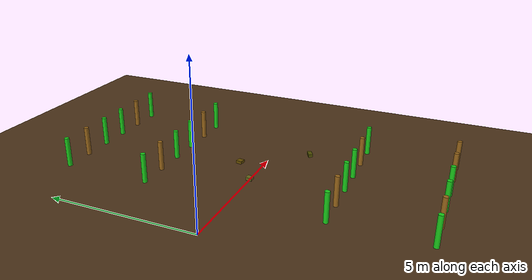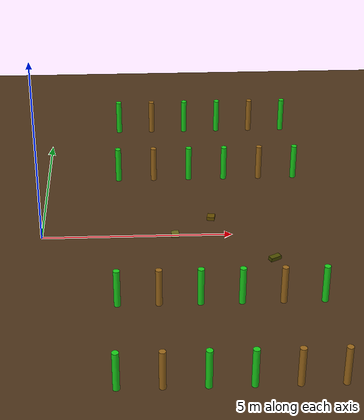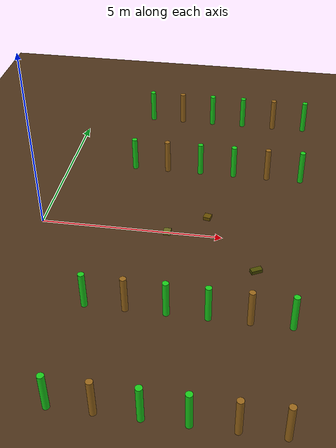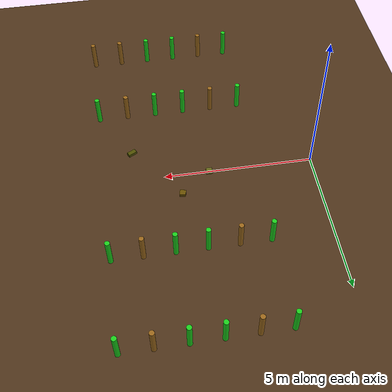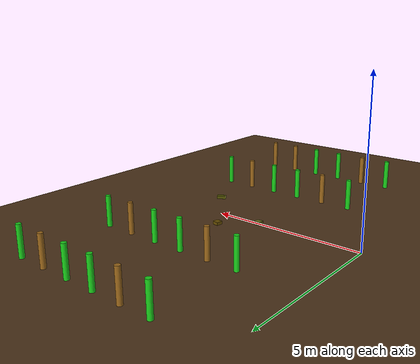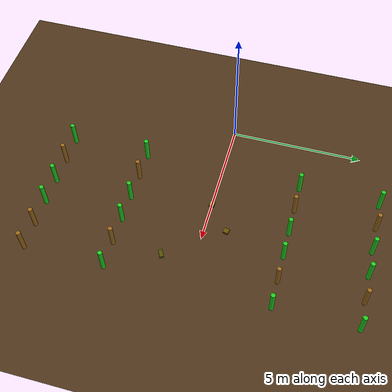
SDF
<?xml version="1.0" ?>
<sdf version="1.8">
  <world name="agribot_farm">
    <physics name="1ms" type="ignored">
      <max_step_size>0.001</max_step_size>
      <real_time_factor>1.0</real_time_factor>
    </physics>

    <plugin filename="gz-sim-physics-system" name="gz::sim::systems::Physics"/>
    <plugin filename="gz-sim-user-commands-system" name="gz::sim::systems::UserCommands"/>
    <plugin filename="gz-sim-scene-broadcaster-system" name="gz::sim::systems::SceneBroadcaster"/>

    <light type="directional" name="sun">
      <cast_shadows>true</cast_shadows>
      <pose>0 0 10 0 0 0</pose>
      <diffuse>0.9 0.9 0.8 1</diffuse>
      <direction>-0.5 0.1 -0.9</direction>
    </light>

    <model name="ground_plane">
      <static>true</static>
      <link name="link">
        <collision name="collision">
          <geometry><plane><normal>0 0 1</normal><size>100 100</size></plane></geometry>
        </collision>
        <visual name="visual">
          <geometry><plane><normal>0 0 1</normal><size>100 100</size></plane></geometry>
          <material><ambient>0.3 0.2 0.1 1</ambient><diffuse>0.3 0.2 0.1 1</diffuse></material>
        </visual>
      </link>
    </model>

  <model name="farm_assets">
  <static>true</static>
  <link name="link">
 <collision name="r1_p1_c"><pose>2 6 0.5 0 0 0</pose><geometry><cylinder><radius>0.08</radius><length>1</length></cylinder></geometry></collision>
        <visual name="r1_p1"><pose>2 6 0.5 0 0 0</pose><geometry><cylinder><radius>0.08</radius><length>1</length></cylinder></geometry><material><ambient>0.1 0.8 0.1 1</ambient><diffuse>0.1 0.8 0.1 1</diffuse></material></visual>

        <collision name="r1_p2_c"><pose>3 6 0.5 0 0 0</pose><geometry><cylinder><radius>0.08</radius><length>1</length></cylinder></geometry></collision>
        <visual name="r1_p2"><pose>3 6 0.5 0 0 0</pose><geometry><cylinder><radius>0.08</radius><length>1</length></cylinder></geometry><material><ambient>0.6 0.4 0.1 1</ambient><diffuse>0.6 0.4 0.1 1</diffuse></material></visual>

        <collision name="r1_p3_c"><pose>4 6 0.5 0 0 0</pose><geometry><cylinder><radius>0.08</radius><length>1</length></cylinder></geometry></collision>
        <visual name="r1_p3"><pose>4 6 0.5 0 0 0</pose><geometry><cylinder><radius>0.08</radius><length>1</length></cylinder></geometry><material><ambient>0.1 0.8 0.1 1</ambient><diffuse>0.1 0.8 0.1 1</diffuse></material></visual>

        <collision name="r1_p4_c"><pose>5 6 0.5 0 0 0</pose><geometry><cylinder><radius>0.08</radius><length>1</length></cylinder></geometry></collision>
        <visual name="r1_p4"><pose>5 6 0.5 0 0 0</pose><geometry><cylinder><radius>0.08</radius><length>1</length></cylinder></geometry><material><ambient>0.1 0.8 0.1 1</ambient><diffuse>0.1 0.8 0.1 1</diffuse></material></visual>

        <collision name="r1_p5_c"><pose>6 6 0.5 0 0 0</pose><geometry><cylinder><radius>0.08</radius><length>1</length></cylinder></geometry></collision>
        <visual name="r1_p5"><pose>6 6 0.5 0 0 0</pose><geometry><cylinder><radius>0.08</radius><length>1</length></cylinder></geometry><material><ambient>0.6 0.4 0.1 1</ambient><diffuse>0.6 0.4 0.1 1</diffuse></material></visual>

        <collision name="r1_p6_c"><pose>7 6 0.5 0 0 0</pose><geometry><cylinder><radius>0.08</radius><length>1</length></cylinder></geometry></collision>
        <visual name="r1_p6"><pose>7 6 0.5 0 0 0</pose><geometry><cylinder><radius>0.08</radius><length>1</length></cylinder></geometry><material><ambient>0.1 0.8 0.1 1</ambient><diffuse>0.1 0.8 0.1 1</diffuse></material></visual>

        <!-- ROW 2 (y=3) -->
        <collision name="r2_p1_c"><pose>2 3 0.5 0 0 0</pose><geometry><cylinder><radius>0.08</radius><length>1</length></cylinder></geometry></collision>
        <visual name="r2_p1"><pose>2 3 0.5 0 0 0</pose><geometry><cylinder><radius>0.08</radius><length>1</length></cylinder></geometry><material><ambient>0.1 0.8 0.1 1</ambient><diffuse>0.1 0.8 0.1 1</diffuse></material></visual>

        <collision name="r2_p2_c"><pose>3 3 0.5 0 0 0</pose><geometry><cylinder><radius>0.08</radius><length>1</length></cylinder></geometry></collision>
        <visual name="r2_p2"><pose>3 3 0.5 0 0 0</pose><geometry><cylinder><radius>0.08</radius><length>1</length></cylinder></geometry><material><ambient>0.6 0.4 0.1 1</ambient><diffuse>0.6 0.4 0.1 1</diffuse></material></visual>

        <collision name="r2_p3_c"><pose>4 3 0.5 0 0 0</pose><geometry><cylinder><radius>0.08</radius><length>1</length></cylinder></geometry></collision>
        <visual name="r2_p3"><pose>4 3 0.5 0 0 0</pose><geometry><cylinder><radius>0.08</radius><length>1</length></cylinder></geometry><material><ambient>0.1 0.8 0.1 1</ambient><diffuse>0.1 0.8 0.1 1</diffuse></material></visual>

        <collision name="r2_p4_c"><pose>5 3 0.5 0 0 0</pose><geometry><cylinder><radius>0.08</radius><length>1</length></cylinder></geometry></collision>
        <visual name="r2_p4"><pose>5 3 0.5 0 0 0</pose><geometry><cylinder><radius>0.08</radius><length>1</length></cylinder></geometry><material><ambient>0.1 0.8 0.1 1</ambient><diffuse>0.1 0.8 0.1 1</diffuse></material></visual>

        <collision name="r2_p5_c"><pose>6 3 0.5 0 0 0</pose><geometry><cylinder><radius>0.08</radius><length>1</length></cylinder></geometry></collision>
        <visual name="r2_p5"><pose>6 3 0.5 0 0 0</pose><geometry><cylinder><radius>0.08</radius><length>1</length></cylinder></geometry><material><ambient>0.6 0.4 0.1 1</ambient><diffuse>0.6 0.4 0.1 1</diffuse></material></visual>

        <collision name="r2_p6_c"><pose>7 3 0.5 0 0 0</pose><geometry><cylinder><radius>0.08</radius><length>1</length></cylinder></geometry></collision>
        <visual name="r2_p6"><pose>7 3 0.5 0 0 0</pose><geometry><cylinder><radius>0.08</radius><length>1</length></cylinder></geometry><material><ambient>0.1 0.8 0.1 1</ambient><diffuse>0.1 0.8 0.1 1</diffuse></material></visual>

        <!-- ROW 3 (y=-3) -->
        <collision name="r3_p1_c"><pose>2 -3 0.5 0 0 0</pose><geometry><cylinder><radius>0.08</radius><length>1</length></cylinder></geometry></collision>
        <visual name="r3_p1"><pose>2 -3 0.5 0 0 0</pose><geometry><cylinder><radius>0.08</radius><length>1</length></cylinder></geometry><material><ambient>0.1 0.8 0.1 1</ambient><diffuse>0.1 0.8 0.1 1</diffuse></material></visual>

        <collision name="r3_p2_c"><pose>3 -3 0.5 0 0 0</pose><geometry><cylinder><radius>0.08</radius><length>1</length></cylinder></geometry></collision>
        <visual name="r3_p2"><pose>3 -3 0.5 0 0 0</pose><geometry><cylinder><radius>0.08</radius><length>1</length></cylinder></geometry><material><ambient>0.6 0.4 0.1 1</ambient><diffuse>0.6 0.4 0.1 1</diffuse></material></visual>

        <collision name="r3_p3_c"><pose>4 -3 0.5 0 0 0</pose><geometry><cylinder><radius>0.08</radius><length>1</length></cylinder></geometry></collision>
        <visual name="r3_p3"><pose>4 -3 0.5 0 0 0</pose><geometry><cylinder><radius>0.08</radius><length>1</length></cylinder></geometry><material><ambient>0.1 0.8 0.1 1</ambient><diffuse>0.1 0.8 0.1 1</diffuse></material></visual>

        <collision name="r3_p4_c"><pose>5 -3 0.5 0 0 0</pose><geometry><cylinder><radius>0.08</radius><length>1</length></cylinder></geometry></collision>
        <visual name="r3_p4"><pose>5 -3 0.5 0 0 0</pose><geometry><cylinder><radius>0.08</radius><length>1</length></cylinder></geometry><material><ambient>0.1 0.8 0.1 1</ambient><diffuse>0.1 0.8 0.1 1</diffuse></material></visual>

        <collision name="r3_p5_c"><pose>6 -3 0.5 0 0 0</pose><geometry><cylinder><radius>0.08</radius><length>1</length></cylinder></geometry></collision>
        <visual name="r3_p5"><pose>6 -3 0.5 0 0 0</pose><geometry><cylinder><radius>0.08</radius><length>1</length></cylinder></geometry><material><ambient>0.6 0.4 0.1 1</ambient><diffuse>0.6 0.4 0.1 1</diffuse></material></visual>

        <collision name="r3_p6_c"><pose>7 -3 0.5 0 0 0</pose><geometry><cylinder><radius>0.08</radius><length>1</length></cylinder></geometry></collision>
        <visual name="r3_p6"><pose>7 -3 0.5 0 0 0</pose><geometry><cylinder><radius>0.08</radius><length>1</length></cylinder></geometry><material><ambient>0.1 0.8 0.1 1</ambient><diffuse>0.1 0.8 0.1 1</diffuse></material></visual>

        <!-- ROW 4 (y=-6) -->
        <collision name="r4_p1_c"><pose>2 -6 0.5 0 0 0</pose><geometry><cylinder><radius>0.08</radius><length>1</length></cylinder></geometry></collision>
        <visual name="r4_p1"><pose>2 -6 0.5 0 0 0</pose><geometry><cylinder><radius>0.08</radius><length>1</length></cylinder></geometry><material><ambient>0.1 0.8 0.1 1</ambient><diffuse>0.1 0.8 0.1 1</diffuse></material></visual>

        <collision name="r4_p2_c"><pose>3 -6 0.5 0 0 0</pose><geometry><cylinder><radius>0.08</radius><length>1</length></cylinder></geometry></collision>
        <visual name="r4_p2"><pose>3 -6 0.5 0 0 0</pose><geometry><cylinder><radius>0.08</radius><length>1</length></cylinder></geometry><material><ambient>0.6 0.4 0.1 1</ambient><diffuse>0.6 0.4 0.1 1</diffuse></material></visual>

        <collision name="r4_p3_c"><pose>4 -6 0.5 0 0 0</pose><geometry><cylinder><radius>0.08</radius><length>1</length></cylinder></geometry></collision>
        <visual name="r4_p3"><pose>4 -6 0.5 0 0 0</pose><geometry><cylinder><radius>0.08</radius><length>1</length></cylinder></geometry><material><ambient>0.1 0.8 0.1 1</ambient><diffuse>0.1 0.8 0.1 1</diffuse></material></visual>

        <collision name="r4_p4_c"><pose>5 -6 0.5 0 0 0</pose><geometry><cylinder><radius>0.08</radius><length>1</length></cylinder></geometry></collision>
        <visual name="r4_p4"><pose>5 -6 0.5 0 0 0</pose><geometry><cylinder><radius>0.08</radius><length>1</length></cylinder></geometry><material><ambient>0.1 0.8 0.1 1</ambient><diffuse>0.1 0.8 0.1 1</diffuse></material></visual>

        <collision name="r4_p5_c"><pose>6 -6 0.5 0 0 0</pose><geometry><cylinder><radius>0.08</radius><length>1</length></cylinder></geometry></collision>
        <visual name="r4_p5"><pose>6 -6 0.5 0 0 0</pose><geometry><cylinder><radius>0.08</radius><length>1</length></cylinder></geometry><material><ambient>0.6 0.4 0.1 1</ambient><diffuse>0.6 0.4 0.1 1</diffuse></material></visual>
 <collision name="r4_p6_c"><pose>7 -6 0.5 0 0 0</pose><geometry><cylinder><radius>0.08</radius><length>1</length></cylinder></geometry></collision>
        <visual name="r4_p6"><pose> 7 -6 0.5 0 0 0</pose><geometry><cylinder><radius>0.08</radius><length>1</length></cylinder></geometry><material><ambient>0.6 0.4 0.1 1</ambient><diffuse>0.6 0.4 0.1 1</diffuse></material></visual>
   
</link> 
</model>

<!-- Weed 1 -->
<model name="weed_1">
  <static>true</static>
  <link name="link">
    <collision name="weed_1_c">
      <pose>3.5 0 0.05 0 0 0</pose>
      <geometry>
        <box>
          <size>0.2 0.2 0.1</size>
        </box>
      </geometry>
    </collision>
    <visual name="weed_1_v">
      <pose>3.5 0 0.05 0 0 0</pose>
      <geometry>
        <box>
          <size>0.2 0.2 0.1</size>
        </box>
      </geometry>
      <material>
        <ambient>0.4 0.4 0.1 1</ambient>
        <diffuse>0.4 0.4 0.1 1</diffuse>
      </material>
    </visual>
  </link>
</model>

<!-- Weed 2 -->
<model name="weed_2">
  <static>true</static>
  <link name="link">
    <collision name="weed_2_c">
      <pose>6.0 -1.2 0.05 0 0 0.5</pose>
      <geometry>
        <box>
          <size>0.3 0.15 0.1</size>
        </box>
      </geometry>
    </collision>
    <visual name="weed_2_v">
      <pose>6.0 -1.2 0.05 0 0 0.5</pose>
      <geometry>
        <box>
          <size>0.3 0.15 0.1</size>
        </box>
      </geometry>
      <material>
        <ambient>0.3 0.3 0 1</ambient>
      </material>
    </visual>
  </link>
</model>

<!-- Weed 3 -->
<model name="weed_3">
  <static>true</static>
  <link name="link">
    <collision name="weed_3_c">
      <pose>4.5 0.8 0.05 0 0 -0.2</pose>
      <geometry>
        <box>
          <size>0.2 0.2 0.1</size>
        </box>
      </geometry>
    </collision>
    <visual name="weed_3_v">
      <pose>4.5 0.8 0.05 0 0 -0.2</pose>
      <geometry>
        <box>
          <size>0.2 0.2 0.1</size>
        </box>
      </geometry>
      <material>
        <ambient>0.4 0.3 0 1</ambient>
      </material>
    </visual>
  </link>
</model>

  </world>
</sdf>
